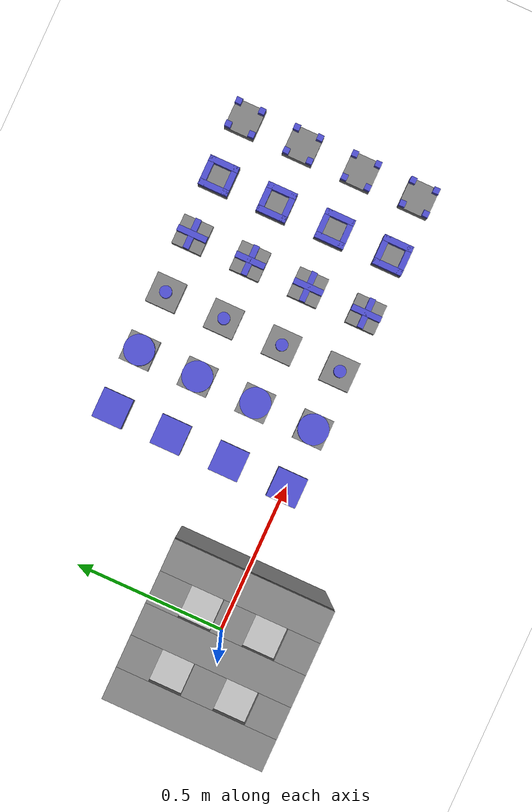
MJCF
<?xml version="1.0" encoding="utf-8"?>
<mujoco model="exploration_base_composition">
	<compiler angle="radian" coordinate="local" texturedir="textures" />
	<option timestep="0.001" cone="elliptic" jacobian="sparse" gravity="0 0 -9.81" />

	<asset>
		<texture builtin="checker" height="512" name="texplane" rgb1=".2 .3 .4" rgb2=".1 .15 .2" type="2d" width="512" />
		<texture type="skybox" builtin="gradient" rgb1="0.8 0.898 1" rgb2="0.8 0.898 1" width="32" height="32" />

		<material name="floor_material" reflectance="0.5" shininess="0.01" specular="0.1" texrepeat="1 1" texture="texplane" texuniform="true" />
        <material name="table_material" specular="0.1" shininess="0.5" reflectance="0.5" rgba="0.73 0.73 0.73 1" />
        <material name="object_material" specular="0" shininess="0.5" reflectance="0" rgba="0.3 0.3 0.8 1" />
        <material name="glance_material" specular="0" shininess="0.5" reflectance="0" rgba="0.35 0.35 0.35 0.07" />

	</asset>

	<custom>
		<!-- All custom parameters related to contact surfaces have the prefix cs:: -->
		<text name="cs::HydroelasticContactRepresentation" data="kTriangle"/>
		<numeric name="cs::VisualizeSurfaces" data="0"/>
		<numeric name="cs::object_geom" data="0 1.0 0.1 0.3 0.3"/>
		<numeric name="cs::myrmex_foam" data="1e4 7.0 0 0.3 0.3"/>

		<numeric name="cs::f0_geom0_0" data="0 1.0 0.1 0.3 0.3"/>
		<numeric name="cs::f1_geom0_0" data="0 1.0 0.1 0.3 0.3"/>
		<numeric name="cs::f2_geom0_0" data="0 1.0 0.1 0.3 0.3"/>
		<numeric name="cs::f3_geom1_0" data="0 1.0 0.1 0.3 0.3"/>
		<numeric name="cs::f3_geom2_0" data="0 1.0 0.1 0.3 0.3"/>
		<numeric name="cs::f4_geom1_0" data="0 1.0 0.1 0.3 0.3"/>
		<numeric name="cs::f4_geom2_0" data="0 1.0 0.1 0.3 0.3"/>
		<numeric name="cs::f4_geom3_0" data="0 1.0 0.1 0.3 0.3"/>
		<numeric name="cs::f4_geom4_0" data="0 1.0 0.1 0.3 0.3"/>
		<numeric name="cs::f5_geom1_0" data="0 1.0 0.1 0.3 0.3"/>
		<numeric name="cs::f5_geom2_0" data="0 1.0 0.1 0.3 0.3"/>
		<numeric name="cs::f5_geom3_0" data="0 1.0 0.1 0.3 0.3"/>
		<numeric name="cs::f5_geom4_0" data="0 1.0 0.1 0.3 0.3"/>

		<numeric name="cs::f0_geom0_1" data="0 1.0 0.1 0.3 0.3"/>
		<numeric name="cs::f1_geom0_1" data="0 1.0 0.1 0.3 0.3"/>
		<numeric name="cs::f2_geom0_1" data="0 1.0 0.1 0.3 0.3"/>
		<numeric name="cs::f3_geom1_1" data="0 1.0 0.1 0.3 0.3"/>
		<numeric name="cs::f3_geom2_1" data="0 1.0 0.1 0.3 0.3"/>
		<numeric name="cs::f4_geom1_1" data="0 1.0 0.1 0.3 0.3"/>
		<numeric name="cs::f4_geom2_1" data="0 1.0 0.1 0.3 0.3"/>
		<numeric name="cs::f4_geom3_1" data="0 1.0 0.1 0.3 0.3"/>
		<numeric name="cs::f4_geom4_1" data="0 1.0 0.1 0.3 0.3"/>
		<numeric name="cs::f5_geom1_1" data="0 1.0 0.1 0.3 0.3"/>
		<numeric name="cs::f5_geom2_1" data="0 1.0 0.1 0.3 0.3"/>
		<numeric name="cs::f5_geom3_1" data="0 1.0 0.1 0.3 0.3"/>
		<numeric name="cs::f5_geom4_1" data="0 1.0 0.1 0.3 0.3"/>

		<numeric name="cs::f0_geom0_2" data="0 1.0 0.1 0.3 0.3"/>
		<numeric name="cs::f1_geom0_2" data="0 1.0 0.1 0.3 0.3"/>
		<numeric name="cs::f2_geom0_2" data="0 1.0 0.1 0.3 0.3"/>
		<numeric name="cs::f3_geom1_2" data="0 1.0 0.1 0.3 0.3"/>
		<numeric name="cs::f3_geom2_2" data="0 1.0 0.1 0.3 0.3"/>
		<numeric name="cs::f4_geom1_2" data="0 1.0 0.1 0.3 0.3"/>
		<numeric name="cs::f4_geom2_2" data="0 1.0 0.1 0.3 0.3"/>
		<numeric name="cs::f4_geom3_2" data="0 1.0 0.1 0.3 0.3"/>
		<numeric name="cs::f4_geom4_2" data="0 1.0 0.1 0.3 0.3"/>
		<numeric name="cs::f5_geom1_2" data="0 1.0 0.1 0.3 0.3"/>
		<numeric name="cs::f5_geom2_2" data="0 1.0 0.1 0.3 0.3"/>
		<numeric name="cs::f5_geom3_2" data="0 1.0 0.1 0.3 0.3"/>
		<numeric name="cs::f5_geom4_2" data="0 1.0 0.1 0.3 0.3"/>

		<numeric name="cs::f0_geom0_3" data="0 1.0 0.1 0.3 0.3"/>
		<numeric name="cs::f1_geom0_3" data="0 1.0 0.1 0.3 0.3"/>
		<numeric name="cs::f2_geom0_3" data="0 1.0 0.1 0.3 0.3"/>
		<numeric name="cs::f3_geom1_3" data="0 1.0 0.1 0.3 0.3"/>
		<numeric name="cs::f3_geom2_3" data="0 1.0 0.1 0.3 0.3"/>
		<numeric name="cs::f4_geom1_3" data="0 1.0 0.1 0.3 0.3"/>
		<numeric name="cs::f4_geom2_3" data="0 1.0 0.1 0.3 0.3"/>
		<numeric name="cs::f4_geom3_3" data="0 1.0 0.1 0.3 0.3"/>
		<numeric name="cs::f4_geom4_3" data="0 1.0 0.1 0.3 0.3"/>
		<numeric name="cs::f5_geom1_3" data="0 1.0 0.1 0.3 0.3"/>
		<numeric name="cs::f5_geom2_3" data="0 1.0 0.1 0.3 0.3"/>
		<numeric name="cs::f5_geom3_3" data="0 1.0 0.1 0.3 0.3"/>
		<numeric name="cs::f5_geom4_3" data="0 1.0 0.1 0.3 0.3"/>

	</custom>

    <worldbody>
		<geom name="ground_plane" pos="0 0 0" type="plane" condim="3" size="5 5 10" material="floor_material" rgba="1 1 1 1"/>

		<geom name="table" pos="0 0 0.18" size="0.25 0.25 0.18" type="box" material="table_material"/>

		<body name="board_boundary" pos="0 0 0.36">

			<geom type="box" pos="0 0 0.015" size="0.05 0.25 0.015"/>
			<geom type="box" pos="0.2 0 0.015" size="0.05 0.25 0.015"/>
			<geom type="box" pos="-0.2 0 0.015" size="0.05 0.25 0.015"/>
			<body euler="0 0 1.57079632679">
				<geom type="box" pos="0 0 0.015" size="0.05 0.25 0.015"/>
				<geom type="box" pos="0.2 0 0.015" size="0.05 0.25 0.015"/>
				<geom type="box" pos="-0.2 0 0.015" size="0.05 0.25 0.015"/>
			</body>

		</body>

		<!-- FEATURES POSITION 0 -->

		<body name="f0_0" pos="0.5 0. 0">
			<freejoint/>
			<geom name="f0_geom0_0" type="box" pos="0 0 0.04" size="0.05 0.05 0.01" material="object_material"/>
			<geom type="box" pos="0 0 0.015" size="0.05 0.05 0.015"/>
		</body>

		<body name="f1_0" pos="0.7 0. 0">
			<freejoint/>
			<geom name="f1_geom0_0" type="cylinder" pos="0 0 0.04" size="0.05 0.01" material="object_material"/>
			<geom type="box" pos="0 0 0.015" size="0.05 0.05 0.015"/>
		</body>

		<body name="f2_0" pos="0.9 0. 0">
			<freejoint/>
			<geom name="f2_geom0_0" type="cylinder" pos="0 0 0.04" size="0.02 0.01" material="object_material"/>
			<geom type="box" pos="0 0 0.015" size="0.05 0.05 0.015"/>
		</body>

		<body name="f3_0" pos="1.1 0. 0">
			<freejoint/>
			<geom name="f3_geom1_0" type="box" pos="0 0 0.04" size="0.01 0.05 0.01" material="object_material"/>
			<body euler="0 0 1.57079632679">
				<geom name="f3_geom2_0" type="box" pos="0 0 0.04" size="0.01 0.05 0.01" material="object_material"/>
			</body>
			<geom type="box" pos="0 0 0.015" size="0.05 0.05 0.015"/>
		</body>

		<body name="f4_0" pos="1.3 0. 0">
			<freejoint/>
			<geom name="f4_geom1_0" type="box" pos="0.04 0 0.04" size="0.01 0.05 0.01" material="object_material"/>
			<geom name="f4_geom2_0" type="box" pos="-0.04 0 0.04" size="0.01 0.05 0.01" material="object_material"/>
			<body euler="0 0 1.57079632679">
				<geom name="f4_geom3_0" type="box" pos="0.04 0 0.04" size="0.01 0.05 0.01" material="object_material"/>
				<geom name="f4_geom4_0" type="box" pos="-0.04 0 0.04" size="0.01 0.05 0.01" material="object_material"/>
			</body>
			<geom type="box" pos="0 0 0.015" size="0.05 0.05 0.015"/>
		</body>

		<body name="f5_0" pos="1.5 0. 0">
			<freejoint/>
			<geom name="f5_geom1_0" type="box" pos="0.04 0.04 0.04" size="0.01 0.01 0.01" material="object_material"/>
			<geom name="f5_geom2_0" type="box" pos="-0.04 0.04 0.04" size="0.01 0.01 0.01" material="object_material"/>
			<geom name="f5_geom3_0" type="box" pos="0.04 -0.04 0.04" size="0.01 0.01 0.01" material="object_material"/>
			<geom name="f5_geom4_0" type="box" pos="-0.04 -0.04 0.04" size="0.01 0.01 0.01" material="object_material"/>
			<geom type="box" pos="0 0 0.015" size="0.05 0.05 0.015"/>
		</body>

		<!-- FEATURES POSITION 1 -->

		<body name="f0_1" pos="0.5 0.2 0">
			<freejoint/>
			<geom name="f0_geom0_1" type="box" pos="0 0 0.04" size="0.05 0.05 0.01" material="object_material"/>
			<geom type="box" pos="0 0 0.015" size="0.05 0.05 0.015"/>
		</body>

		<body name="f1_1" pos="0.7 0.2 0">
			<freejoint/>
			<geom name="f1_geom0_1" type="cylinder" pos="0 0 0.04" size="0.05 0.01" material="object_material"/>
			<geom type="box" pos="0 0 0.015" size="0.05 0.05 0.015"/>
		</body>

		<body name="f2_1" pos="0.9 0.2 0">
			<freejoint/>
			<geom name="f2_geom0_1" type="cylinder" pos="0 0 0.04" size="0.02 0.01" material="object_material"/>
			<geom type="box" pos="0 0 0.015" size="0.05 0.05 0.015"/>
		</body>

		<body name="f3_1" pos="1.1 0.2 0">
			<freejoint/>
			<geom name="f3_geom1_1" type="box" pos="0 0 0.04" size="0.01 0.05 0.01" material="object_material"/>
			<body euler="0 0 1.57079632679">
				<geom name="f3_geom2_1" type="box" pos="0 0 0.04" size="0.01 0.05 0.01" material="object_material"/>
			</body>
			<geom type="box" pos="0 0 0.015" size="0.05 0.05 0.015"/>
		</body>

		<body name="f4_1" pos="1.3 0.2 0">
			<freejoint/>
			<geom name="f4_geom1_1" type="box" pos="0.04 0 0.04" size="0.01 0.05 0.01" material="object_material"/>
			<geom name="f4_geom2_1" type="box" pos="-0.04 0 0.04" size="0.01 0.05 0.01" material="object_material"/>
			<body euler="0 0 1.57079632679">
				<geom name="f4_geom3_1" type="box" pos="0.04 0 0.04" size="0.01 0.05 0.01" material="object_material"/>
				<geom name="f4_geom4_1" type="box" pos="-0.04 0 0.04" size="0.01 0.05 0.01" material="object_material"/>
			</body>
			<geom type="box" pos="0 0 0.015" size="0.05 0.05 0.015"/>
		</body>

		<body name="f5_1" pos="1.5 0.2 0">
			<freejoint/>
			<geom name="f5_geom1_1" type="box" pos="0.04 0.04 0.04" size="0.01 0.01 0.01" material="object_material"/>
			<geom name="f5_geom2_1" type="box" pos="-0.04 0.04 0.04" size="0.01 0.01 0.01" material="object_material"/>
			<geom name="f5_geom3_1" type="box" pos="0.04 -0.04 0.04" size="0.01 0.01 0.01" material="object_material"/>
			<geom name="f5_geom4_1" type="box" pos="-0.04 -0.04 0.04" size="0.01 0.01 0.01" material="object_material"/>
			<geom type="box" pos="0 0 0.015" size="0.05 0.05 0.015"/>
		</body>

		<!-- FEATURES POSITION 2 -->

		<body name="f0_2" pos="0.5 0.4 0">
			<freejoint/>
			<geom name="f0_geom0_2" type="box" pos="0 0 0.04" size="0.05 0.05 0.01" material="object_material"/>
			<geom type="box" pos="0 0 0.015" size="0.05 0.05 0.015"/>
		</body>

		<body name="f1_2" pos="0.7 0.4 0">
			<freejoint/>
			<geom name="f1_geom0_2" type="cylinder" pos="0 0 0.04" size="0.05 0.01" material="object_material"/>
			<geom type="box" pos="0 0 0.015" size="0.05 0.05 0.015"/>
		</body>

		<body name="f2_2" pos="0.9 0.4 0">
			<freejoint/>
			<geom name="f2_geom0_2" type="cylinder" pos="0 0 0.04" size="0.02 0.01" material="object_material"/>
			<geom type="box" pos="0 0 0.015" size="0.05 0.05 0.015"/>
		</body>

		<body name="f3_2" pos="1.1 0.4 0">
			<freejoint/>
			<geom name="f3_geom1_2" type="box" pos="0 0 0.04" size="0.01 0.05 0.01" material="object_material"/>
			<body euler="0 0 1.57079632679">
				<geom name="f3_geom2_2" type="box" pos="0 0 0.04" size="0.01 0.05 0.01" material="object_material"/>
			</body>
			<geom type="box" pos="0 0 0.015" size="0.05 0.05 0.015"/>
		</body>

		<body name="f4_2" pos="1.3 0.4 0">
			<freejoint/>
			<geom name="f4_geom1_2" type="box" pos="0.04 0 0.04" size="0.01 0.05 0.01" material="object_material"/>
			<geom name="f4_geom2_2" type="box" pos="-0.04 0 0.04" size="0.01 0.05 0.01" material="object_material"/>
			<body euler="0 0 1.57079632679">
				<geom name="f4_geom3_2" type="box" pos="0.04 0 0.04" size="0.01 0.05 0.01" material="object_material"/>
				<geom name="f4_geom4_2" type="box" pos="-0.04 0 0.04" size="0.01 0.05 0.01" material="object_material"/>
			</body>
			<geom type="box" pos="0 0 0.015" size="0.05 0.05 0.015"/>
		</body>

		<body name="f5_2" pos="1.5 0.4 0">
			<freejoint/>
			<geom name="f5_geom1_2" type="box" pos="0.04 0.04 0.04" size="0.01 0.01 0.01" material="object_material"/>
			<geom name="f5_geom2_2" type="box" pos="-0.04 0.04 0.04" size="0.01 0.01 0.01" material="object_material"/>
			<geom name="f5_geom3_2" type="box" pos="0.04 -0.04 0.04" size="0.01 0.01 0.01" material="object_material"/>
			<geom name="f5_geom4_2" type="box" pos="-0.04 -0.04 0.04" size="0.01 0.01 0.01" material="object_material"/>
			<geom type="box" pos="0 0 0.015" size="0.05 0.05 0.015"/>
		</body>

		<!-- FEATURES POSITION 3 -->

		<body name="f0_3" pos="0.5 0.6 0">
			<freejoint/>
			<geom name="f0_geom0_3" type="box" pos="0 0 0.04" size="0.05 0.05 0.01" material="object_material"/>
			<geom type="box" pos="0 0 0.015" size="0.05 0.05 0.015"/>
		</body>

		<body name="f1_3" pos="0.7 0.6 0">
			<freejoint/>
			<geom name="f1_geom0_3" type="cylinder" pos="0 0 0.04" size="0.05 0.01" material="object_material"/>
			<geom type="box" pos="0 0 0.015" size="0.05 0.05 0.015"/>
		</body>

		<body name="f2_3" pos="0.9 0.6 0">
			<freejoint/>
			<geom name="f2_geom0_3" type="cylinder" pos="0 0 0.04" size="0.02 0.01" material="object_material"/>
			<geom type="box" pos="0 0 0.015" size="0.05 0.05 0.015"/>
		</body>

		<body name="f3_3" pos="1.1 0.6 0">
			<freejoint/>
			<geom name="f3_geom1_3" type="box" pos="0 0 0.04" size="0.01 0.05 0.01" material="object_material"/>
			<body euler="0 0 1.57079632679">
				<geom name="f3_geom2_3" type="box" pos="0 0 0.04" size="0.01 0.05 0.01" material="object_material"/>
			</body>
			<geom type="box" pos="0 0 0.015" size="0.05 0.05 0.015"/>
		</body>

		<body name="f4_3" pos="1.3 0.6 0">
			<freejoint/>
			<geom name="f4_geom1_3" type="box" pos="0.04 0 0.04" size="0.01 0.05 0.01" material="object_material"/>
			<geom name="f4_geom2_3" type="box" pos="-0.04 0 0.04" size="0.01 0.05 0.01" material="object_material"/>
			<body euler="0 0 1.57079632679">
				<geom name="f4_geom3_3" type="box" pos="0.04 0 0.04" size="0.01 0.05 0.01" material="object_material"/>
				<geom name="f4_geom4_3" type="box" pos="-0.04 0 0.04" size="0.01 0.05 0.01" material="object_material"/>
			</body>
			<geom type="box" pos="0 0 0.015" size="0.05 0.05 0.015"/>
		</body>

		<body name="f5_3" pos="1.5 0.6 0">
			<freejoint/>
			<geom name="f5_geom1_3" type="box" pos="0.04 0.04 0.04" size="0.01 0.01 0.01" material="object_material"/>
			<geom name="f5_geom2_3" type="box" pos="-0.04 0.04 0.04" size="0.01 0.01 0.01" material="object_material"/>
			<geom name="f5_geom3_3" type="box" pos="0.04 -0.04 0.04" size="0.01 0.01 0.01" material="object_material"/>
			<geom name="f5_geom4_3" type="box" pos="-0.04 -0.04 0.04" size="0.01 0.01 0.01" material="object_material"/>
			<geom type="box" pos="0 0 0.015" size="0.05 0.05 0.015"/>
		</body>

		<light directional="true" ambient="0.2 0.2 0.2" diffuse="0.8 0.8 0.8" specular="0.3 0.3 0.3" castshadow="false" pos="0 0 4" dir="0 0 -1" name="light0" />
	</worldbody>

</mujoco>
